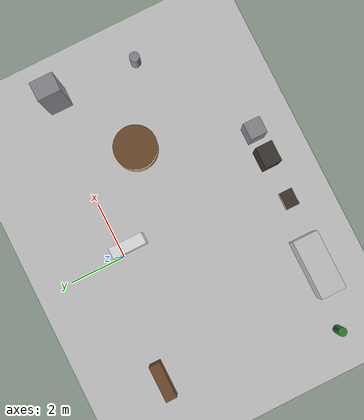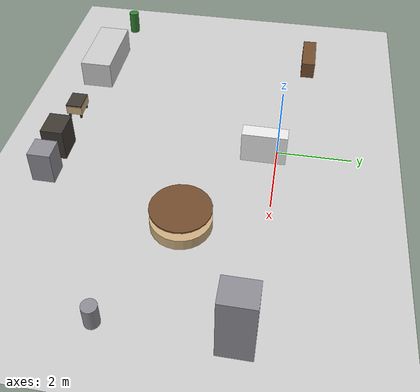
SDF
<sdf version="1.6">
 <world name="robocup_casa">
  <include><uri>model://sun</uri></include>
  <include><uri>model://ground_plane</uri></include>
  <model name="tv_stand">
   <static>true</static>
   <link name="l0">
    <pose>-4.312 0.642 0.250 0 0 0.0000</pose>
    <collision name="c"><geometry><box><size>1.300 0.400 0.500</size></box></geometry></collision>
    <visual name="v">
     <geometry><box><size>1.300 0.400 0.500</size></box></geometry>
     <material><ambient>0.45 0.30 0.18 1</ambient><diffuse>0.45 0.30 0.18 1</diffuse></material>
    </visual>
   </link>
  </model>
  <model name="sofa">
   <static>true</static>
   <link name="l0">
    <pose>-3.150 -5.700 0.400 0 0 0.0000</pose>
    <collision name="c"><geometry><box><size>2.100 0.900 0.800</size></box></geometry></collision>
    <visual name="v">
     <geometry><box><size>2.100 0.900 0.800</size></box></geometry>
     <material><ambient>0.80 0.80 0.80 1</ambient><diffuse>0.80 0.80 0.80 1</diffuse></material>
    </visual>
   </link>
  </model>
  <model name="coffee_table">
   <static>true</static>
   <link name="l0">
    <pose>-0.770 -5.880 0.275 0 0 0.0000</pose>
    <collision name="c"><geometry><box><size>0.600 0.450 0.250</size></box></geometry></collision>
    <visual name="v">
     <geometry><box><size>0.600 0.450 0.250</size></box></geometry>
     <material><ambient>0.80 0.68 0.50 1</ambient><diffuse>0.80 0.68 0.50 1</diffuse></material>
    </visual>
   </link>
   <link name="l1">
    <pose>-0.770 -5.880 0.430 0 0 0.0000</pose>
    <collision name="c"><geometry><box><size>0.600 0.450 0.040</size></box></geometry></collision>
    <visual name="v">
     <geometry><box><size>0.600 0.450 0.040</size></box></geometry>
     <material><ambient>0.25 0.22 0.20 1</ambient><diffuse>0.25 0.22 0.20 1</diffuse></material>
    </visual>
   </link>
   <link name="l2">
    <pose>-1.010 -6.045 0.205 0 0 0.0000</pose>
    <collision name="c"><geometry><box><size>0.050 0.050 0.410</size></box></geometry></collision>
    <visual name="v">
     <geometry><box><size>0.050 0.050 0.410</size></box></geometry>
     <material><ambient>0.25 0.22 0.20 1</ambient><diffuse>0.25 0.22 0.20 1</diffuse></material>
    </visual>
   </link>
   <link name="l3">
    <pose>-1.010 -5.715 0.205 0 0 0.0000</pose>
    <collision name="c"><geometry><box><size>0.050 0.050 0.410</size></box></geometry></collision>
    <visual name="v">
     <geometry><box><size>0.050 0.050 0.410</size></box></geometry>
     <material><ambient>0.25 0.22 0.20 1</ambient><diffuse>0.25 0.22 0.20 1</diffuse></material>
    </visual>
   </link>
   <link name="l4">
    <pose>-0.530 -6.045 0.205 0 0 0.0000</pose>
    <collision name="c"><geometry><box><size>0.050 0.050 0.410</size></box></geometry></collision>
    <visual name="v">
     <geometry><box><size>0.050 0.050 0.410</size></box></geometry>
     <material><ambient>0.25 0.22 0.20 1</ambient><diffuse>0.25 0.22 0.20 1</diffuse></material>
    </visual>
   </link>
   <link name="l5">
    <pose>-0.530 -5.715 0.205 0 0 0.0000</pose>
    <collision name="c"><geometry><box><size>0.050 0.050 0.410</size></box></geometry></collision>
    <visual name="v">
     <geometry><box><size>0.050 0.050 0.410</size></box></geometry>
     <material><ambient>0.25 0.22 0.20 1</ambient><diffuse>0.25 0.22 0.20 1</diffuse></material>
    </visual>
   </link>
  </model>
  <model name="planta_living">
   <static>true</static>
   <link name="l0">
    <pose>-5.460 -5.390 0.350 0 0 0.0000</pose>
    <collision name="c">
     <geometry><cylinder><radius>0.150</radius><length>0.700</length></cylinder></geometry>
    </collision>
    <visual name="v">
     <geometry><cylinder><radius>0.150</radius><length>0.700</length></cylinder></geometry>
     <material><ambient>0.20 0.50 0.20 1</ambient><diffuse>0.20 0.50 0.20 1</diffuse></material>
    </visual>
   </link>
  </model>
  <model name="cabinet">
   <static>true</static>
   <link name="l0">
    <pose>0.240 -0.350 0.450 0 0 0.0000</pose>
    <collision name="c"><geometry><box><size>0.400 1.200 0.900</size></box></geometry></collision>
    <visual name="v">
     <geometry><box><size>0.400 1.200 0.900</size></box></geometry>
     <material><ambient>0.92 0.92 0.92 1</ambient><diffuse>0.92 0.92 0.92 1</diffuse></material>
    </visual>
   </link>
  </model>
  <model name="refrigerator">
   <static>true</static>
   <link name="l0">
    <pose>5.825 -0.350 0.900 0 0 0.0000</pose>
    <collision name="c"><geometry><box><size>0.650 0.800 1.800</size></box></geometry></collision>
    <visual name="v">
     <geometry><box><size>0.650 0.800 1.800</size></box></geometry>
     <material><ambient>0.55 0.55 0.58 1</ambient><diffuse>0.55 0.55 0.58 1</diffuse></material>
    </visual>
   </link>
  </model>
  <model name="kitchen_trash_bin">
   <static>true</static>
   <link name="l0">
    <pose>5.850 -3.360 0.300 0 0 0.0000</pose>
    <collision name="c">
     <geometry><cylinder><radius>0.180</radius><length>0.600</length></cylinder></geometry>
    </collision>
    <visual name="v">
     <geometry><cylinder><radius>0.180</radius><length>0.600</length></cylinder></geometry>
     <material><ambient>0.55 0.55 0.58 1</ambient><diffuse>0.55 0.55 0.58 1</diffuse></material>
    </visual>
   </link>
  </model>
  <model name="dinner_table">
   <static>true</static>
   <link name="l0">
    <pose>3.066 -2.030 0.300 0 0 0.0000</pose>
    <collision name="c">
     <geometry><cylinder><radius>0.750</radius><length>0.300</length></cylinder></geometry>
    </collision>
    <visual name="v">
     <geometry><cylinder><radius>0.750</radius><length>0.300</length></cylinder></geometry>
     <material><ambient>0.80 0.68 0.50 1</ambient><diffuse>0.80 0.68 0.50 1</diffuse></material>
    </visual>
   </link>
   <link name="l1">
    <pose>3.066 -2.030 0.730 0 0 0.0000</pose>
    <collision name="c">
     <geometry><cylinder><radius>0.750</radius><length>0.040</length></cylinder></geometry>
    </collision>
    <visual name="v">
     <geometry><cylinder><radius>0.750</radius><length>0.040</length></cylinder></geometry>
     <material><ambient>0.45 0.30 0.18 1</ambient><diffuse>0.45 0.30 0.18 1</diffuse></material>
    </visual>
   </link>
   <link name="l2">
    <pose>2.721 -2.375 0.355 0 0 0.0000</pose>
    <collision name="c"><geometry><box><size>0.050 0.050 0.710</size></box></geometry></collision>
    <visual name="v">
     <geometry><box><size>0.050 0.050 0.710</size></box></geometry>
     <material><ambient>0.45 0.30 0.18 1</ambient><diffuse>0.45 0.30 0.18 1</diffuse></material>
    </visual>
   </link>
   <link name="l3">
    <pose>2.721 -1.685 0.355 0 0 0.0000</pose>
    <collision name="c"><geometry><box><size>0.050 0.050 0.710</size></box></geometry></collision>
    <visual name="v">
     <geometry><box><size>0.050 0.050 0.710</size></box></geometry>
     <material><ambient>0.45 0.30 0.18 1</ambient><diffuse>0.45 0.30 0.18 1</diffuse></material>
    </visual>
   </link>
   <link name="l4">
    <pose>3.411 -2.375 0.355 0 0 0.0000</pose>
    <collision name="c"><geometry><box><size>0.050 0.050 0.710</size></box></geometry></collision>
    <visual name="v">
     <geometry><box><size>0.050 0.050 0.710</size></box></geometry>
     <material><ambient>0.45 0.30 0.18 1</ambient><diffuse>0.45 0.30 0.18 1</diffuse></material>
    </visual>
   </link>
   <link name="l5">
    <pose>3.411 -1.685 0.355 0 0 0.0000</pose>
    <collision name="c"><geometry><box><size>0.050 0.050 0.710</size></box></geometry></collision>
    <visual name="v">
     <geometry><box><size>0.050 0.050 0.710</size></box></geometry>
     <material><ambient>0.45 0.30 0.18 1</ambient><diffuse>0.45 0.30 0.18 1</diffuse></material>
    </visual>
   </link>
  </model>
  <model name="counter">
   <static>true</static>
   <link name="l0">
    <pose>0.840 -5.850 0.450 0 0 0.0000</pose>
    <collision name="c"><geometry><box><size>0.750 0.600 0.900</size></box></geometry></collision>
    <visual name="v">
     <geometry><box><size>0.750 0.600 0.900</size></box></geometry>
     <material><ambient>0.25 0.22 0.20 1</ambient><diffuse>0.25 0.22 0.20 1</diffuse></material>
    </visual>
   </link>
  </model>
  <model name="sink">
   <static>true</static>
   <link name="l0">
    <pose>1.820 -5.850 0.450 0 0 0.0000</pose>
    <collision name="c"><geometry><box><size>0.600 0.600 0.900</size></box></geometry></collision>
    <visual name="v">
     <geometry><box><size>0.600 0.600 0.900</size></box></geometry>
     <material><ambient>0.55 0.55 0.58 1</ambient><diffuse>0.55 0.55 0.58 1</diffuse></material>
    </visual>
   </link>
  </model>
 </world>
</sdf>
